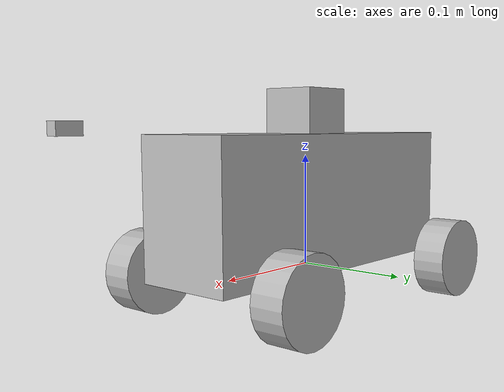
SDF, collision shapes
<?xml version="1.0"?>
<sdf version="1.8">
  <model name='nandhi'>

    <link name='chassis'>
      <inertial>
        <pose>0 0 0 0 0 0</pose>
        <mass>3.0</mass>
        <inertia>
          <ixx>0.0054</ixx>
          <ixy>0</ixy>
          <ixz>0</ixz>
          <iyy>0.0252</iyy>
          <iyz>0</iyz>
          <izz>0.0252</izz>
        </inertia>
      </inertial>
      <visual name="base_visual">
        <pose>.1371 0 -.0115 -0.018 0 1.5707</pose>
        <geometry>
          <mesh>
            <uri>model://nandhi/meshes/BaseReduced.dae</uri>
          </mesh>
        </geometry>
      </visual>
      <visual name="top_visual">
        <pose>.1371 0 -.0115 -0.018 0 1.5707</pose>
        <geometry>
          <mesh>
            <uri>model://nandhi/meshes/TopReduced.dae</uri>
          </mesh>
        </geometry>
      </visual>
      <collision name="collision">
        <pose>0 0 .06 0 0 0</pose>
        <geometry>
          <box>
            <size>.3 .09 .12</size>
          </box>
        </geometry>
      </collision>
    </link>

    <link name='front_left_wheel'>
      <pose relative_to="front_left_wheel_joint">0 0 0 0 0 0</pose>
      <inertial>
        <mass>.05</mass>
        <inertia>
          <ixx>0.00003331</ixx>
          <ixy>0</ixy>
          <ixz>0</ixz>
          <iyy>0.0000204</iyy>
          <iyz>0</iyz>
          <iyx>0</iyx>
          <izz>0.0000204</izz>
          <izx>0</izx>
          <izy>0</izy>
        </inertia>
      </inertial>
      <gravity>true</gravity>
      <velocity_decay />
      <visual name="front_left_wheel_visual">
        <pose>0 0 0 0 0 3.14159</pose>
        <geometry>
          <mesh>
            <uri>model://nandhi/meshes/Wheel.dae</uri>
          </mesh>
        </geometry>
      </visual>
      <collision name="front_left_wheel_collision">
        <pose>0 -.015 0 -1.5707 0 0</pose>
        <geometry>
          <cylinder>
            <length>0.03</length>
            <radius>0.0365</radius>
          </cylinder>
        </geometry>
        <surface>
          <friction>
            <ode>
              <mu>0.5</mu>
              <mu2>1.0</mu2>
              <fdir1>0 0 1</fdir1>
            </ode>
          </friction>
        </surface>
      </collision>
    </link>

    <link name='rear_left_wheel'>
      <pose relative_to="rear_left_wheel_joint">0 0 0 0 0 0</pose>
      <inertial>
        <mass>.05</mass>
        <inertia>
          <ixx>0.00003331</ixx>
          <ixy>0</ixy>
          <ixz>0</ixz>
          <iyy>0.0000204</iyy>
          <iyz>0</iyz>
          <iyx>0</iyx>
          <izz>0.0000204</izz>
          <izx>0</izx>
          <izy>0</izy>
        </inertia>
      </inertial>
      <gravity>true</gravity>
      <velocity_decay />
      <visual name="rear_left_wheel_visual">
        <pose>0 0 0 0 0 3.14159</pose>
        <geometry>
          <mesh>
            <uri>model://nandhi/meshes/Wheel.dae</uri>
          </mesh>
        </geometry>
      </visual>
      <collision name="rear_left_wheel_collision">
        <pose>0 -.015 0 -1.5707 0 0</pose>
        <geometry>
          <cylinder>
            <length>0.03</length>
            <radius>0.0365</radius>
          </cylinder>
        </geometry>
        <surface>
          <friction>
            <ode>
              <mu>0.5</mu>
              <mu2>1.0</mu2>
              <fdir1>0 0 1</fdir1>
            </ode>
          </friction>
        </surface>
      </collision>
    </link>

    <link name='front_right_wheel'>
      <pose relative_to="front_right_wheel_joint">0 0 0 0 0 0</pose>
      <inertial>
        <mass>.05</mass>
        <inertia>
          <ixx>0.00003331</ixx>
          <ixy>0</ixy>
          <ixz>0</ixz>
          <iyy>0.0000204</iyy>
          <iyz>0</iyz>
          <izz>0.0000204</izz>
        </inertia>
      </inertial>
      <gravity>true</gravity>
      <velocity_decay />
      <visual name="front_right_wheel_visual">
        <pose>0 0 0 0 0 0</pose>
        <geometry>
          <mesh>
            <uri>model://nandhi/meshes/Wheel.dae</uri>
          </mesh>
        </geometry>
      </visual>
      <collision name="front_right_wheel_collision">
        <pose>0 .015 0 -1.5707 0 0</pose>
        <geometry>
          <cylinder>
            <length>0.03</length>
            <radius>0.0365</radius>
          </cylinder>
        </geometry>
        <surface>
          <friction>
            <ode>
              <mu>0.5</mu>
              <mu2>1.0</mu2>
              <fdir1>0 0 1</fdir1>
            </ode>
          </friction>
        </surface>
      </collision>
    </link>

    <link name='rear_right_wheel'>
      <pose relative_to="rear_right_wheel_joint">0 0 0 0 0 0</pose>
      <inertial>
        <mass>.05</mass>
        <inertia>
          <ixx>0.00003331</ixx>
          <ixy>0</ixy>
          <ixz>0</ixz>
          <iyy>0.0000204</iyy>
          <iyz>0</iyz>
          <iyx>0</iyx>
          <izz>0.0000204</izz>
          <izy>0</izy>
          <izx>0</izx>
        </inertia>
      </inertial>
      <gravity>true</gravity>
      <velocity_decay />
      <visual name="rear_right_wheel_visual">
        <pose>0 0 0 0 0 0</pose>
        <geometry>
          <mesh>
            <uri>model://nandhi/meshes/Wheel.dae</uri>
          </mesh>
        </geometry>
      </visual>
      <collision name="rear_right_wheel_collision">
        <pose>0 .015 0 -1.5707 0 0</pose>
        <geometry>
          <cylinder>
            <length>0.03</length>
            <radius>0.0365</radius>
          </cylinder>
        </geometry>
        <surface>
          <friction>
            <ode>
              <mu>0.5</mu>
              <mu2>1.0</mu2>
              <fdir1>0 0 1</fdir1>
            </ode>
          </friction>
        </surface>
      </collision>
    </link>

    <link name="front_left_wheel_steering_link">
      <pose relative_to="front_left_wheel_steering_joint">0 0 0 0 0 0</pose>
      <inertial>
        <mass>0.005</mass>
        <inertia>
          <ixx>0.0000018</ixx>
          <ixy>0</ixy>
          <ixz>0</ixz>
          <iyy>0.0000018</iyy>
          <iyx>0</iyx>
          <iyz>0</iyz>
          <izz>0.0000018</izz>
          <izx>0</izx>
          <izy>0</izy>
        </inertia>
      </inertial>
    </link>

    <link name="front_right_wheel_steering_link">
      <pose relative_to="front_right_wheel_steering_joint">0 0 0 0 0 0</pose>
      <inertial>
        <mass>0.005</mass>
        <inertia>
          <ixx>0.0000018</ixx>
          <ixy>0</ixy>
          <ixz>0</ixz>
          <iyy>0.0000018</iyy>
          <iyx>0</iyx>
          <iyz>0</iyz>
          <izz>0.0000018</izz>
          <izx>0</izx>
          <izy>0</izy>
        </inertia>
      </inertial>
    </link>

    <joint name="front_left_wheel_steering_joint" type="revolute">
      <parent>chassis</parent>
      <child>front_left_wheel_steering_link</child>
      <pose relative_to="chassis">.112 .10 0 0 0 0</pose>
      <axis>
        <xyz>0 0 1</xyz>
        <limit>
          <lower>-0.6</lower>
          <upper>0.6</upper>
          <velocity>1.0</velocity>
          <effort>25</effort>
        </limit>
        <use_parent_model_frame>1</use_parent_model_frame>
      </axis>
    </joint>

    <joint name="front_right_wheel_steering_joint" type="revolute">
      <parent>chassis</parent>
      <child>front_right_wheel_steering_link</child>
      <pose relative_to="chassis">.112 -.10 0 0 0 0</pose>
      <axis>
        <xyz>0 0 1</xyz>
        <limit>
          <lower>-0.6</lower>
          <upper>0.6</upper>
          <velocity>1.0</velocity>
          <effort>25</effort>
        </limit>
        <use_parent_model_frame>1</use_parent_model_frame>
      </axis>
    </joint>

    <joint name='front_left_wheel_joint' type='revolute'>
      <parent>front_left_wheel_steering_link</parent>
      <child>front_left_wheel</child>
      <pose relative_to="front_left_wheel_steering_joint">0 0 0 0 0 0</pose>
      <axis>
        <xyz>0 1 0</xyz>
        <limit>
          <lower>-1.79769e+308</lower>
          <upper>1.79769e+308</upper>
        </limit>
        <dynamics>
          <spring_reference>0</spring_reference>
          <spring_stiffness>0</spring_stiffness>
        </dynamics>
        <use_parent_model_frame>1</use_parent_model_frame>
      </axis>
    </joint>

    <joint name='front_right_wheel_joint' type='revolute'>
      <parent>front_right_wheel_steering_link</parent>
      <child>front_right_wheel</child>
      <pose relative_to="front_right_wheel_steering_joint">0 0 0 0 0 0</pose>
      <axis>
        <xyz>0 1 0</xyz>
        <limit>
          <lower>-1.79769e+308</lower>
          <upper>1.79769e+308</upper>
        </limit>
        <dynamics>
          <spring_reference>0</spring_reference>
          <spring_stiffness>0</spring_stiffness>
        </dynamics>
        <use_parent_model_frame>1</use_parent_model_frame>
      </axis>
    </joint>

    <joint name='rear_left_wheel_joint' type='revolute'>
      <parent>chassis</parent>
      <child>rear_left_wheel</child>
      <pose relative_to="chassis">-.1135 .10 0 0 0 0</pose>
      <axis>
        <xyz>0 1 0</xyz>
        <limit>
          <lower>-1.79769e+308</lower>
          <upper>1.79769e+308</upper>
        </limit>
        <dynamics>
          <spring_reference>0</spring_reference>
          <spring_stiffness>0</spring_stiffness>
        </dynamics>
        <use_parent_model_frame>1</use_parent_model_frame>
      </axis>
    </joint>

    <joint name='rear_right_wheel_joint' type='revolute'>
      <parent>chassis</parent>
      <child>rear_right_wheel</child>
      <pose relative_to="chassis">-.1135 -.10 0 0 0 0</pose>
      <axis>
        <xyz>0 1 0</xyz>
        <limit>
          <lower>-1.79769e+308</lower>
          <upper>1.79769e+308</upper>
        </limit>
        <dynamics>
          <spring_reference>0</spring_reference>
          <spring_stiffness>0</spring_stiffness>
        </dynamics>
        <use_parent_model_frame>1</use_parent_model_frame>
      </axis>
    </joint>

    <!-- Below is sensor setup -->

    <link name="lidar_link">
      <pose>0 0 0.135 0 0 0</pose>
      <inertial>
        <mass>0.1</mass>
        <inertia>
          <ixx>0.000166667</ixx>
          <ixy>0</ixy>
          <ixz>0</ixz>
          <iyy>0.000166667</iyy>
          <iyx>0</iyx>
          <iyz>0</iyz>
          <izz>0.000166667</izz>
          <izx>0</izx>
          <izy>0</izy>
        </inertia>
      </inertial>
      <collision name="collision">
        <geometry>
          <box>
            <size>0.05 0.05 0.05</size>
          </box>
        </geometry>
      </collision>
      <visual name="visual">
        <geometry>
          <box>
            <size>0.05 0.05 0.05</size>
          </box>
        </geometry>
      </visual>
      <sensor name='gpu_lidar' type='gpu_lidar'>
        <pose>0 0 0.135 0 0 0</pose>
        <topic>/model/nandhi/lidar</topic>
        <gz_frame_id>nandhi/lidar_link</gz_frame_id>
        <update_rate>10</update_rate>
        <lidar>
          <scan>
            <horizontal>
              <samples>640</samples>
              <resolution>1</resolution>
              <min_angle>-1.396263</min_angle>
              <max_angle>1.396263</max_angle>
            </horizontal>
            <vertical>
              <samples>1</samples>
              <resolution>1</resolution>
              <min_angle>0.0</min_angle>
              <max_angle>0.0</max_angle>
            </vertical>
          </scan>
          <range>
            <min>0.08</min>
            <max>10.0</max>
            <resolution>0.01</resolution>
          </range>
        </lidar>
        <visualize>true</visualize>
      </sensor>
    </link>

    <joint name='lidar_joint' type='fixed'>
      <parent>chassis</parent>
      <child>lidar_link</child>
    </joint>

    <link name="camera_link">
      <pose>0.245 0 0.125 0 0 0</pose>
      <inertial>
        <mass>0.1</mass>
        <inertia>
          <ixx>0.000166667</ixx>
          <ixy>0</ixy>
          <ixz>0</ixz>
          <iyy>0.000166667</iyy>
          <iyx>0</iyx>
          <iyz>0</iyz>
          <izz>0.000166667</izz>
          <izx>0</izx>
          <izy>0</izy>
        </inertia>
      </inertial>
      <collision name="collision">
        <geometry>
          <box>
            <size>0.02 0.01 0.01</size>
          </box>
        </geometry>
      </collision>
      <visual name="visual">
        <geometry>
          <box>
            <size>0.02 0.01 0.01</size>
          </box>
        </geometry>
      </visual>
      <sensor name="camera" type="camera">
        <topic>/model/nandhi/camera</topic>
        <camera>
          <horizontal_fov>1.047</horizontal_fov>
          <image>
            <width>320</width>
            <height>240</height>
          </image>
          <clip>
            <near>0.1</near>
            <far>100</far>
          </clip>
        </camera>
        <always_on>1</always_on>
        <update_rate>30</update_rate>
        <visualize>true</visualize>
      </sensor>
    </link>

    <joint name='camera_joint' type='fixed'>
      <parent>chassis</parent>
      <child>camera_link</child>
    </joint>

    <plugin
      filename="gz-sim-joint-state-publisher-system"
      name="gz::sim::systems::JointStatePublisher">
    </plugin>

    <plugin
      filename="gz-sim-pose-publisher-system"
      name="gz::sim::systems::PosePublisher">
      <publish_link_pose>true</publish_link_pose>
      <use_pose_vector_msg>true</use_pose_vector_msg>
      <static_publisher>true</static_publisher>
      <static_update_frequency>1</static_update_frequency>
    </plugin>

    <plugin
      filename="gz-sim-ackermann-steering-system"
      name="gz::sim::systems::AckermannSteering">
      <left_joint>front_left_wheel_joint</left_joint>
      <left_joint>rear_left_wheel_joint</left_joint>
      <right_joint>front_right_wheel_joint</right_joint>
      <right_joint>rear_right_wheel_joint</right_joint>
      <left_steering_joint>front_left_wheel_steering_joint</left_steering_joint>
      <right_steering_joint>front_right_wheel_steering_joint</right_steering_joint>
      <kingpin_width>.18</kingpin_width>
      <steering_limit>0.5</steering_limit>
      <wheel_base>.2255</wheel_base>
      <wheel_separation>.2</wheel_separation>
      <wheel_radius>0.0365</wheel_radius>
      <min_velocity>-100</min_velocity>
      <max_velocity>100</max_velocity>
      <min_acceleration>-5</min_acceleration>
      <max_acceleration>5</max_acceleration>
    </plugin>
  </model>

</sdf>
